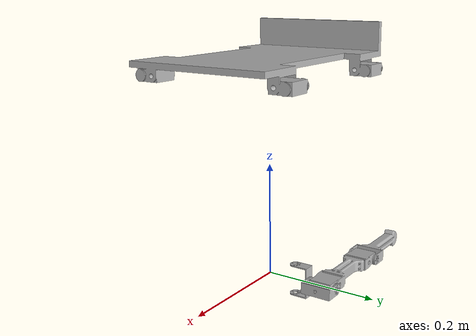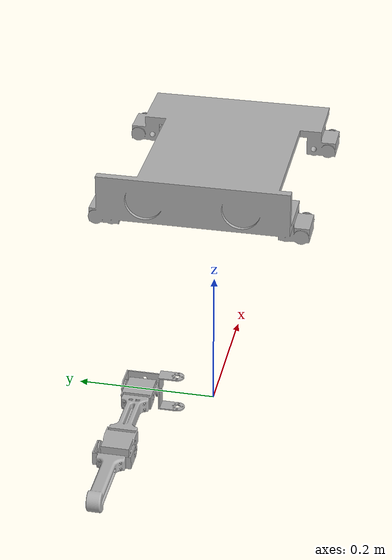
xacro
<?xml version="1.0" ?>
<robot name="FusionComponent" xmlns:xacro="http://www.ros.org/wiki/xacro">

<xacro:include filename="$(find quad_description)/urdf/materials.xacro" />
<xacro:include filename="$(find quad_description)/urdf/bot_urdf_hii.gazebo" />

<link name="base_link">
  <inertial>
    <origin xyz="-0.23304185033712116 -0.030638440357548022 6.972053510835912e-05" rpy="0 0 0"/>
    <mass value="3.992059884157941"/>
    <inertia ixx="0.006111" iyy="0.083346" izz="0.084204" ixy="-0.000991" iyz="-3e-06" ixz="-7.3e-05"/>
  </inertial>
  <visual>
    <origin xyz="0 0 0" rpy="0 0 0"/>
    <geometry>
      <mesh filename="file://$(find quad_description)/meshes/base_link.stl" scale="0.001 0.001 0.001"/>
    </geometry>
    <material name="silver"/>
  </visual>
  <collision>
    <origin xyz="0 0 0" rpy="0 0 0"/>
    <geometry>
      <mesh filename="file://$(find quad_description)/meshes/base_link.stl" scale="0.001 0.001 0.001"/>
    </geometry>
  </collision>
</link>

<link name="link2_v1_1">
  <inertial>
    <origin xyz="-0.07723046995547814 0.024997684987540944 3.1657101628697684e-08" rpy="0 0 0"/>
    <mass value="0.2750466774023333"/>
    <inertia ixx="4.7e-05" iyy="0.000922" izz="0.00095" ixy="-0.0" iyz="-0.0" ixz="-0.0"/>
  </inertial>
  <visual>
    <origin xyz="0.0 -0.082299 -0.001201" rpy="0 0 0"/>
    <geometry>
      <mesh filename="file://$(find quad_description)/meshes/link2_v1_1.stl" scale="0.001 0.001 0.001"/>
    </geometry>
    <material name="silver"/>
  </visual>
  <collision>
    <origin xyz="0.0 -0.082299 -0.001201" rpy="0 0 0"/>
    <geometry>
      <mesh filename="file://$(find quad_description)/meshes/link2_v1_1.stl" scale="0.001 0.001 0.001"/>
    </geometry>
  </collision>
</link>

<link name="link3_1">
  <inertial>
    <origin xyz="-0.06999157163515277 0.02549464787405195 2.816749020764786e-07" rpy="0 0 0"/>
    <mass value="0.04435870319124352"/>
    <inertia ixx="6e-06" iyy="6.3e-05" izz="6.5e-05" ixy="-0.0" iyz="0.0" ixz="-0.0"/>
  </inertial>
  <visual>
    <origin xyz="0.154 -0.082299 -0.001201" rpy="0 0 0"/>
    <geometry>
      <mesh filename="file://$(find quad_description)/meshes/link3_1.stl" scale="0.001 0.001 0.001"/>
    </geometry>
    <material name="silver"/>
  </visual>
  <collision>
    <origin xyz="0.154 -0.082299 -0.001201" rpy="0 0 0"/>
    <geometry>
      <mesh filename="file://$(find quad_description)/meshes/link3_1.stl" scale="0.001 0.001 0.001"/>
    </geometry>
  </collision>
</link>

<link name="link1_1">
  <inertial>
    <origin xyz="0.00883677372894309 0.036086841346824314 0.02549993238197565" rpy="0 0 0"/>
    <mass value="0.023765734421080365"/>
    <inertia ixx="2.1e-05" iyy="1e-05" izz="1.9e-05" ixy="-4e-06" iyz="0.0" ixz="-0.0"/>
  </inertial>
  <visual>
    <origin xyz="0.0 -0.053299 0.024299" rpy="0 0 0"/>
    <geometry>
      <mesh filename="file://$(find quad_description)/meshes/link1_1.stl" scale="0.001 0.001 0.001"/>
    </geometry>
    <material name="silver"/>
  </visual>
  <collision>
    <origin xyz="0.0 -0.053299 0.024299" rpy="0 0 0"/>
    <geometry>
      <mesh filename="file://$(find quad_description)/meshes/link1_1.stl" scale="0.001 0.001 0.001"/>
    </geometry>
  </collision>
</link>

<link name="leg_3_v1_1_fixed_ee"/>

<link name="link1_rotated"/>

<joint name="link1_rotated_joint" type="fixed">
  <origin xyz="0.0 0.053299 -0.024299" rpy="0 0 3.14"/>
  <parent link="base_link"/>
  <child link="link1_rotated"/>
</joint>

<joint name="base_link1_joint" type="revolute">
  <origin xyz="0.0 0.0 0.0" rpy="0 0 -3.14"/>
  <parent link="link1_rotated"/>
  <child link="link1_1"/>
  <axis xyz="0.0 0.0 1.0"/>
  <limit upper="1.570796" lower="-1.570796" effort="100" velocity="100"/>
</joint>

<joint name="link1_link2_joint" type="revolute">
  <origin xyz="0.0 0.029 0.0255" rpy="0 0 0"/>
  <parent link="link1_1"/>
  <child link="link2_v1_1"/>
  <axis xyz="0.0 1.0 0.0"/>
  <limit upper="1.570796" lower="-1.570796" effort="100" velocity="100"/>
</joint>

<joint name="link2_link3_joint" type="revolute">
  <origin xyz="-0.154 0.0 0.0" rpy="0 0 0"/>
  <parent link="link2_v1_1"/>
  <child link="link3_1"/>
  <axis xyz="0.0 1.0 0.0"/>
  <limit upper="2.61" lower="-0.523" effort="100" velocity="100"/>
</joint>

<joint name="Fixed_j" type="fixed">
  <origin xyz="-0.125 0.025 0.0" rpy="1.57 0 3.14"/>
  <parent link="link3_1"/>
  <child link="leg_3_v1_1_fixed_ee"/>
</joint>

</robot>

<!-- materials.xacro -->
<robot name="FusionComponent" xmlns:xacro="http://www.ros.org/wiki/xacro" >

<material name="silver">
  <color rgba="0.700 0.700 0.700 1.000"/>
</material>

</robot>

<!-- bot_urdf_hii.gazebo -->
<robot name="FusionComponent" xmlns:xacro="http://www.ros.org/wiki/xacro" >

<xacro:property name="body_color" value="Gazebo/Silver" />

<gazebo reference="base_link">
  <material>${body_color}</material>
  <mu1>0.2</mu1>
  <mu2>0.2</mu2>
  <selfCollide>true</selfCollide>
  <gravity>true</gravity>
</gazebo>

<gazebo reference="lb1">
  <material>${body_color}</material>
  <mu1>0.2</mu1>
  <mu2>0.2</mu2>
  <selfCollide>true</selfCollide>
</gazebo>

<gazebo reference="lf1">
  <material>${body_color}</material>
  <mu1>0.2</mu1>
  <mu2>0.2</mu2>
  <selfCollide>true</selfCollide>
</gazebo>

<gazebo reference="rb1">
  <material>${body_color}</material>
  <mu1>0.2</mu1>
  <mu2>0.2</mu2>
  <selfCollide>true</selfCollide>
</gazebo>

<gazebo reference="rf1">
  <material>${body_color}</material>
  <mu1>0.2</mu1>
  <mu2>0.2</mu2>
  <selfCollide>true</selfCollide>
</gazebo>

<gazebo reference="lb2">
  <material>${body_color}</material>
  <mu1>0.2</mu1>
  <mu2>0.2</mu2>
  <selfCollide>true</selfCollide>
</gazebo>

<gazebo reference="lf2">
  <material>${body_color}</material>
  <mu1>0.2</mu1>
  <mu2>0.2</mu2>
  <selfCollide>true</selfCollide>
</gazebo>

<gazebo reference="rb2">
  <material>${body_color}</material>
  <mu1>0.2</mu1>
  <mu2>0.2</mu2>
  <selfCollide>true</selfCollide>
</gazebo>

<gazebo reference="rf2">
  <material>${body_color}</material>
  <mu1>0.2</mu1>
  <mu2>0.2</mu2>
  <selfCollide>true</selfCollide>
</gazebo>

<gazebo reference="lb3">
 <mu1>1.5</mu1>
<mu2>1.5</mu2>
<fdir1>1 1 0</fdir1>
<kp value="3000000.0"/>
<kd value="2000.0"/>
<maxVel>0.05</maxVel>
<self_collide>1</self_collide>
<minDepth>0.005</minDepth>
<restitution_coefficient>0.0</restitution_coefficient>
<threshold>0.2</threshold>
<material>Gazebo/DarkGrey</material>
</gazebo>

<gazebo reference="lf3">
 <mu1>1.5</mu1>
<mu2>1.5</mu2>
<fdir1>1 1 0</fdir1>
<kp value="3000000.0"/>
<kd value="2000.0"/>
<maxVel>0.05</maxVel>
<self_collide>1</self_collide>
<minDepth>0.005</minDepth>
<restitution_coefficient>0.0</restitution_coefficient>
<threshold>0.2</threshold>
<material>Gazebo/DarkGrey</material>
</gazebo>

<gazebo reference="rb3">
 <mu1>1.5</mu1>
<mu2>1.5</mu2>
<fdir1>1 1 0</fdir1>
<kp value="3000000.0"/>
<kd value="2000.0"/>
<maxVel>0.05</maxVel>
<self_collide>1</self_collide>
<minDepth>0.005</minDepth>
<restitution_coefficient>0.0</restitution_coefficient>
<threshold>0.2</threshold>
<material>Gazebo/DarkGrey</material>
</gazebo>

<gazebo reference="rf3">
<mu1>1.5</mu1>
<mu2>1.5</mu2>
<fdir1>1 1 0</fdir1>
<kp value="3000000.0"/>
<kd value="2000.0"/>
<maxVel>0.05</maxVel>
<self_collide>1</self_collide>
<minDepth>0.005</minDepth>
<restitution_coefficient>0.0</restitution_coefficient>
<threshold>0.2</threshold>
<material>Gazebo/DarkGrey</material>
</gazebo>

<gazebo reference="leg_rb_tip">
 <mu1>1.5</mu1>
<mu2>1.5</mu2>
<fdir1>1 1 0</fdir1>
<kp value="3000000.0"/>
<kd value="2000.0"/>
<maxVel>0.05</maxVel>
<self_collide>1</self_collide>
<minDepth>0.005</minDepth>
<restitution_coefficient>0.0</restitution_coefficient>
<threshold>0.2</threshold>
<material>Gazebo/DarkGrey</material>
</gazebo>

<gazebo reference="leg_rf_tip">
  <mu1>1.5</mu1>
<mu2>1.5</mu2>
<fdir1>1 1 0</fdir1>
<kp value="3000000.0"/>
<kd value="2000.0"/>
<maxVel>0.05</maxVel>
<self_collide>1</self_collide>
<minDepth>0.005</minDepth>
<restitution_coefficient>0.0</restitution_coefficient>
<threshold>0.2</threshold>
<material>Gazebo/DarkGrey</material>
</gazebo>

<gazebo reference="leg_lb_tip">
 <mu1>1.5</mu1>
<mu2>1.5</mu2>
<fdir1>1 1 0</fdir1>
<kp value="3000000.0"/>
<kd value="2000.0"/>
<maxVel>0.05</maxVel>
<self_collide>1</self_collide>
<minDepth>0.005</minDepth>
<restitution_coefficient>0.0</restitution_coefficient>
<threshold>0.2</threshold>
<material>Gazebo/DarkGrey</material>
</gazebo>

<gazebo reference="leg_lf_tip">
  <mu1>1.5</mu1>
<mu2>1.5</mu2>
<fdir1>1 1 0</fdir1>
<kp value="3000000.0"/>
<kd value="2000.0"/>
<maxVel>0.05</maxVel>
<self_collide>1</self_collide>
<minDepth>0.005</minDepth>
<restitution_coefficient>0.0</restitution_coefficient>
<threshold>0.2</threshold>
<material>Gazebo/DarkGrey</material>
</gazebo>

</robot>
